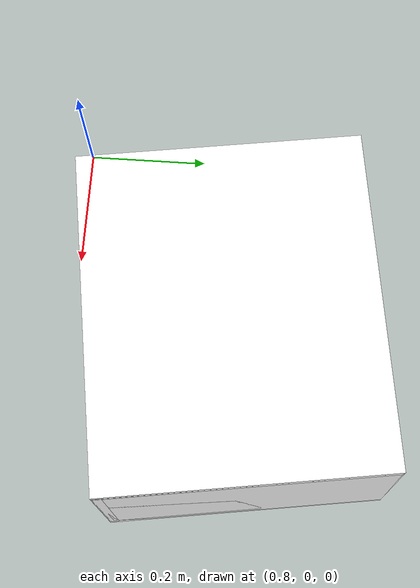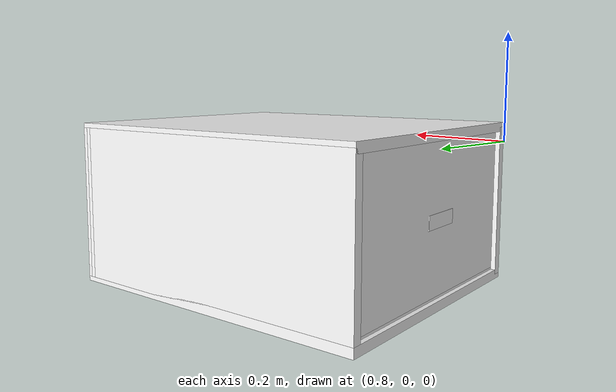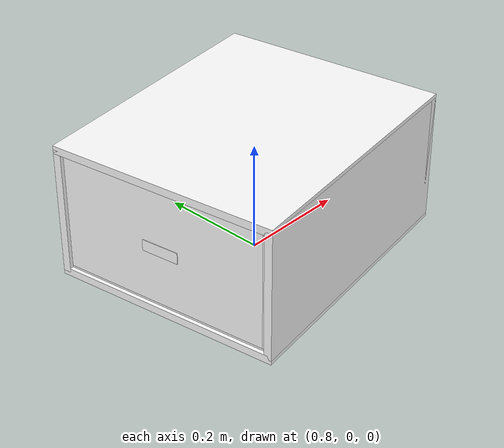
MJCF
<mujoco model="drawer">
        <compiler angle="radian" eulerseq='zxy' />
        <option gravity = "0 0 0" />
        <option>
            <flag contact = "disable"/>
        </option>
        <statistic	extent="1.0" center="0.0 0.0 0.0"/>
        <visual>
            <map fogstart="3" fogend="5" force="0.1" znear=" 0.100000 " zfar=" 12.000000 "/>
        </visual>
        <size njmax="500" nconmax="100" />
        <actuator>
            <velocity joint="drawerJ" name="viva_revolution" kv='10'></velocity>
        </actuator>
        <asset>
            <texture builtin="flat" name="objtex" height="32" width="32" rgb1="1 1 1" type="cube"></texture>
            <texture builtin="flat" name="handletex" height="32" width="32" rgb1="1 1 1" type="cube"></texture>
            <material name="geomObj" shininess="0.03" specular="0.75" texture="objtex"></material>
            <material name="geomHandle" shininess="0.03" specular="0.75" texture="handletex"></material>
        </asset>
        <worldbody>
            <body name="cabinet_bottom" pos= " 1.079288 0.269241 -0.258319 "  quat= " -0.074039 0.000000 0.000000 0.997255" >
                <inertial pos="0 0 0" mass="1" diaginertia="1 1 1" />
                <geom size= " 0.302474 0.253610 0.008616 "  type="box" material="geomObj" name="b"/>
                <body name="cabinet_left" pos= " 0.000000 -0.244994 0.142083 " >
                    <inertial pos="0 0 0" mass="1" diaginertia="1 1 1" />
                    <geom size= " 0.302474 0.008616 0.142083 "  type="box" material="geomObj" name="c" />
                </body>
                <body name="cabinet_right" pos= " 0.000000 0.244994 0.142083 " >
                    <inertial pos="0 0 0" mass="1" diaginertia="1 1 1" />
                    <geom size= " 0.302474 0.008616 0.142083 "  type="box" material="geomObj" name="d" />
                </body>
                <body name="cabinet_top" pos= " 0.000000 0.000000 0.284167 " >
                    <inertial pos="0 0 0" mass="1" diaginertia="1 1 1" />
                    <geom size= " 0.302474 0.253610 0.008616 "  type="box" material="geomObj" name="e"/>
                </body>
                <body name="cabinet_back" pos= " -0.293858 0.000000 0.142083 "  >
                    <inertial pos="0 0 0" mass="1" diaginertia="1 1 1" />
                    <geom size= " 0.008616 0.253610 0.142083 "  type="box" material="geomObj" name="f" />
                </body>
                <body name="drawer" pos= " 0.000000 0.000000 0.004308 "  >
                    <geom size= " 0.293858 0.244994 0.008616 "  type="box" material="geomObj" name="ddddfadfadsfac" />
                    <joint name="drawerJ" pos="0 0 0" axis="1 0 0" type="slide" limited="true" range= "0  0.45371147990226746 "  />
                    <inertial pos="0 0 0" mass="1" diaginertia="1 1 1" />
                    <body name="drawer_left" pos= " 0.000000 -0.236378 0.142083 " >
                        <inertial pos="0 0 0" mass="1" diaginertia="1 1 1" />
                        <geom size= " 0.293858 0.008616 0.133467 "  type="box" material="geomObj" name="ddc" />
                    </body>
                    <body name="drawer_right" pos= " 0.000000 0.236378 0.142083 " >
                        <inertial pos="0 0 0" mass="1" diaginertia="1 1 1" />
                        <geom size= " 0.293858 0.008616 0.133467 "  type="box" material="geomObj" name="dddd" />
                    </body>
                    <body name="drawer_front" pos= " 0.285242 0.000000 0.142083 " >
                        <inertial pos="0 0 0" mass="1" diaginertia="1 1 1" />
                        <geom size= " 0.008616 0.244994 0.133467 "  type="box" material="geomObj" name="eeeee"/>
                    </body>
                    <body name="drawer_back" pos= " -0.293858 0.000000 0.142083 "  >
                        <inertial pos="0 0 0" mass="1" diaginertia="1 1 1" />
                        <geom size= " 0.008616 0.244994 0.133467 "  type="box" material="geomObj" name="fffff" />
                    </body>
                    <body name="knob" pos= " 0.302474 0.000000 0.142083 " >
                        <inertial pos="0 0 0" mass="0.1" diaginertia="0.1 0.1 0.1" />
                        <geom size= " 0.000683 0.041468 0.012452 "  pos="0 0 0" type="box" material="geomHandle" name="handle"/>
                    </body>
                </body>
            </body>
            <body name="external_camera_body_0" pos="0.0 0 0.00">
                <camera euler="-1.57 1.57 0.0" fovy=" 54.280851 " name="external_camera_0" pos="0.0 0 0"></camera>
                <inertial pos= " 0.00 0.0 0.000000 " mass="1" diaginertia="1 1 1" />
                <joint name="cam_j" pos="0.0 0 0" axis = "1 0 0" type="free" />
            </body>
        </worldbody>
    </mujoco>
